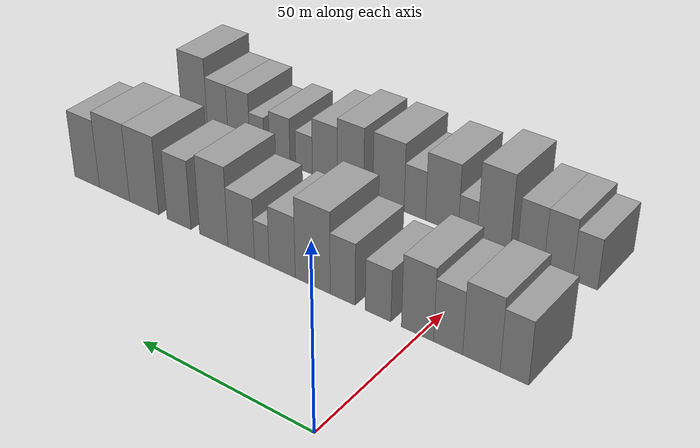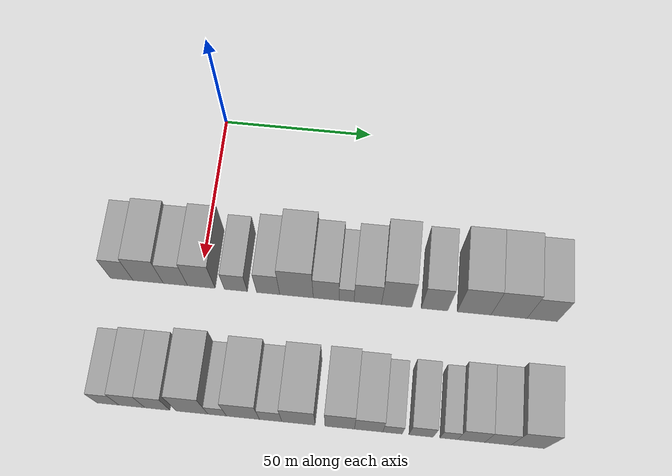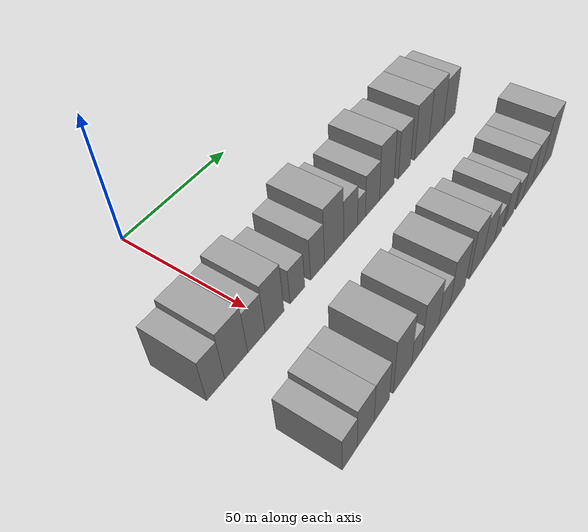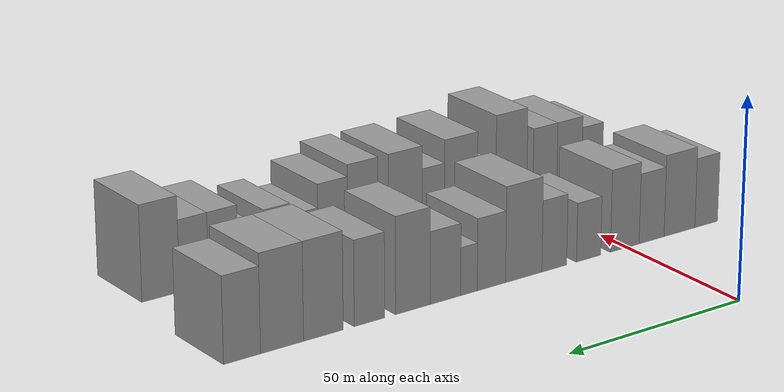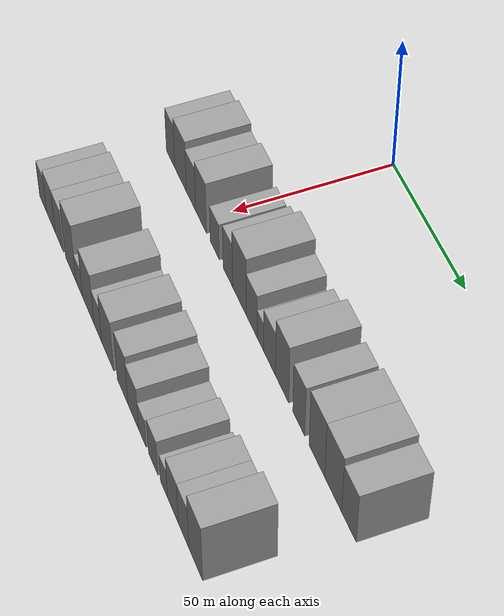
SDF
<sdf version="1.6">
 <world name="default">
  <model name="building_30">
   <static>1</static>
   <pose>50.0000 -25.3044 0 0.000000 0.000000 0.000000</pose>
   <link name="link">
    <pose>0 0 9.00 0 0 0</pose>
    <collision name="collision"><geometry><box><size>20.0000 7.3676 18.0000</size></box></geometry></collision>
    <visual name="visual">
     <cast_shadows>0</cast_shadows>
     <geometry><box><size>20.0000 7.3676 18.0000</size></box></geometry>
     <material>
      <script>
       <uri>model://grey_wall/materials/scripts</uri>
       <uri>model://grey_wall/materials/textures</uri>
       <name>vrc/grey_wall</name>
      </script>
     </material>
    </visual>
   </link>
  </model>
  <model name="building_31">
   <static>1</static>
   <pose>50.0000 -16.6911 0 0.000000 0.000000 0.000000</pose>
   <link name="link">
    <pose>0 0 10.50 0 0 0</pose>
    <collision name="collision"><geometry><box><size>20.0000 9.8591 21.0000</size></box></geometry></collision>
    <visual name="visual">
     <cast_shadows>0</cast_shadows>
     <geometry><box><size>20.0000 9.8591 21.0000</size></box></geometry>
     <material>
      <script>
       <uri>model://grey_wall/materials/scripts</uri>
       <uri>model://grey_wall/materials/textures</uri>
       <name>vrc/grey_wall</name>
      </script>
     </material>
    </visual>
   </link>
  </model>
  <model name="building_32">
   <static>1</static>
   <pose>50.0000 -7.8064 0 0.000000 0.000000 0.000000</pose>
   <link name="link">
    <pose>0 0 9.00 0 0 0</pose>
    <collision name="collision"><geometry><box><size>20.0000 7.9102 18.0000</size></box></geometry></collision>
    <visual name="visual">
     <cast_shadows>0</cast_shadows>
     <geometry><box><size>20.0000 7.9102 18.0000</size></box></geometry>
     <material>
      <script>
       <uri>model://grey_wall/materials/scripts</uri>
       <uri>model://grey_wall/materials/textures</uri>
       <name>vrc/grey_wall</name>
      </script>
     </material>
    </visual>
   </link>
  </model>
  <model name="building_33">
   <static>1</static>
   <pose>50.0000 0.6344 0 0.000000 0.000000 0.000000</pose>
   <link name="link">
    <pose>0 0 10.50 0 0 0</pose>
    <collision name="collision"><geometry><box><size>20.0000 8.9715 21.0000</size></box></geometry></collision>
    <visual name="visual">
     <cast_shadows>0</cast_shadows>
     <geometry><box><size>20.0000 8.9715 21.0000</size></box></geometry>
     <material>
      <script>
       <uri>model://grey_wall/materials/scripts</uri>
       <uri>model://grey_wall/materials/textures</uri>
       <name>vrc/grey_wall</name>
      </script>
     </material>
    </visual>
   </link>
  </model>
  <model name="building_34">
   <static>1</static>
   <pose>50.0000 11.8369 0 0.000000 0.000000 0.000000</pose>
   <link name="link">
    <pose>0 0 7.50 0 0 0</pose>
    <collision name="collision"><geometry><box><size>20.0000 7.4334 15.0000</size></box></geometry></collision>
    <visual name="visual">
     <cast_shadows>0</cast_shadows>
     <geometry><box><size>20.0000 7.4334 15.0000</size></box></geometry>
     <material>
      <script>
       <uri>model://grey_wall/materials/scripts</uri>
       <uri>model://grey_wall/materials/textures</uri>
       <name>vrc/grey_wall</name>
      </script>
     </material>
    </visual>
   </link>
  </model>
  <model name="building_35">
   <static>1</static>
   <pose>50.0000 22.2946 0 0.000000 0.000000 0.000000</pose>
   <link name="link">
    <pose>0 0 9.00 0 0 0</pose>
    <collision name="collision"><geometry><box><size>20.0000 7.4822 18.0000</size></box></geometry></collision>
    <visual name="visual">
     <cast_shadows>0</cast_shadows>
     <geometry><box><size>20.0000 7.4822 18.0000</size></box></geometry>
     <material>
      <script>
       <uri>model://grey_wall/materials/scripts</uri>
       <uri>model://grey_wall/materials/textures</uri>
       <name>vrc/grey_wall</name>
      </script>
     </material>
    </visual>
   </link>
  </model>
  <model name="building_36">
   <static>1</static>
   <pose>50.0000 31.4250 0 0.000000 0.000000 0.000000</pose>
   <link name="link">
    <pose>0 0 12.00 0 0 0</pose>
    <collision name="collision"><geometry><box><size>20.0000 10.7786 24.0000</size></box></geometry></collision>
    <visual name="visual">
     <cast_shadows>0</cast_shadows>
     <geometry><box><size>20.0000 10.7786 24.0000</size></box></geometry>
     <material>
      <script>
       <uri>model://grey_wall/materials/scripts</uri>
       <uri>model://grey_wall/materials/textures</uri>
       <name>vrc/grey_wall</name>
      </script>
     </material>
    </visual>
   </link>
  </model>
  <model name="building_37">
   <static>1</static>
   <pose>50.0000 40.9600 0 0.000000 0.000000 0.000000</pose>
   <link name="link">
    <pose>0 0 9.00 0 0 0</pose>
    <collision name="collision"><geometry><box><size>20.0000 8.2913 18.0000</size></box></geometry></collision>
    <visual name="visual">
     <cast_shadows>0</cast_shadows>
     <geometry><box><size>20.0000 8.2913 18.0000</size></box></geometry>
     <material>
      <script>
       <uri>model://grey_wall/materials/scripts</uri>
       <uri>model://grey_wall/materials/textures</uri>
       <name>vrc/grey_wall</name>
      </script>
     </material>
    </visual>
   </link>
  </model>
  <model name="building_38">
   <static>1</static>
   <pose>50.0000 47.5080 0 0.000000 0.000000 0.000000</pose>
   <link name="link">
    <pose>0 0 6.00 0 0 0</pose>
    <collision name="collision"><geometry><box><size>20.0000 4.8046 12.0000</size></box></geometry></collision>
    <visual name="visual">
     <cast_shadows>0</cast_shadows>
     <geometry><box><size>20.0000 4.8046 12.0000</size></box></geometry>
     <material>
      <script>
       <uri>model://grey_wall/materials/scripts</uri>
       <uri>model://grey_wall/materials/textures</uri>
       <name>vrc/grey_wall</name>
      </script>
     </material>
    </visual>
   </link>
  </model>
  <model name="building_39">
   <static>1</static>
   <pose>50.0000 54.3038 0 0.000000 0.000000 0.000000</pose>
   <link name="link">
    <pose>0 0 9.00 0 0 0</pose>
    <collision name="collision"><geometry><box><size>20.0000 8.7870 18.0000</size></box></geometry></collision>
    <visual name="visual">
     <cast_shadows>0</cast_shadows>
     <geometry><box><size>20.0000 8.7870 18.0000</size></box></geometry>
     <material>
      <script>
       <uri>model://grey_wall/materials/scripts</uri>
       <uri>model://grey_wall/materials/textures</uri>
       <name>vrc/grey_wall</name>
      </script>
     </material>
    </visual>
   </link>
  </model>
  <model name="building_40">
   <static>1</static>
   <pose>50.0000 63.5560 0 0.000000 0.000000 0.000000</pose>
   <link name="link">
    <pose>0 0 12.00 0 0 0</pose>
    <collision name="collision"><geometry><box><size>20.0000 9.7173 24.0000</size></box></geometry></collision>
    <visual name="visual">
     <cast_shadows>0</cast_shadows>
     <geometry><box><size>20.0000 9.7173 24.0000</size></box></geometry>
     <material>
      <script>
       <uri>model://grey_wall/materials/scripts</uri>
       <uri>model://grey_wall/materials/textures</uri>
       <name>vrc/grey_wall</name>
      </script>
     </material>
    </visual>
   </link>
  </model>
  <model name="building_41">
   <static>1</static>
   <pose>50.0000 75.6388 0 0.000000 0.000000 0.000000</pose>
   <link name="link">
    <pose>0 0 10.50 0 0 0</pose>
    <collision name="collision"><geometry><box><size>20.0000 8.4484 21.0000</size></box></geometry></collision>
    <visual name="visual">
     <cast_shadows>0</cast_shadows>
     <geometry><box><size>20.0000 8.4484 21.0000</size></box></geometry>
     <material>
      <script>
       <uri>model://grey_wall/materials/scripts</uri>
       <uri>model://grey_wall/materials/textures</uri>
       <name>vrc/grey_wall</name>
      </script>
     </material>
    </visual>
   </link>
  </model>
  <model name="building_42">
   <static>1</static>
   <pose>50.0000 88.2339 0 0.000000 0.000000 0.000000</pose>
   <link name="link">
    <pose>0 0 12.00 0 0 0</pose>
    <collision name="collision"><geometry><box><size>20.0000 10.7418 24.0000</size></box></geometry></collision>
    <visual name="visual">
     <cast_shadows>0</cast_shadows>
     <geometry><box><size>20.0000 10.7418 24.0000</size></box></geometry>
     <material>
      <script>
       <uri>model://grey_wall/materials/scripts</uri>
       <uri>model://grey_wall/materials/textures</uri>
       <name>vrc/grey_wall</name>
      </script>
     </material>
    </visual>
   </link>
  </model>
  <model name="building_43">
   <static>1</static>
   <pose>50.0000 99.3218 0 0.000000 0.000000 0.000000</pose>
   <link name="link">
    <pose>0 0 12.00 0 0 0</pose>
    <collision name="collision"><geometry><box><size>20.0000 11.4338 24.0000</size></box></geometry></collision>
    <visual name="visual">
     <cast_shadows>0</cast_shadows>
     <geometry><box><size>20.0000 11.4338 24.0000</size></box></geometry>
     <material>
      <script>
       <uri>model://grey_wall/materials/scripts</uri>
       <uri>model://grey_wall/materials/textures</uri>
       <name>vrc/grey_wall</name>
      </script>
     </material>
    </visual>
   </link>
  </model>
  <model name="building_44">
   <static>1</static>
   <pose>50.0000 109.8628 0 0.000000 0.000000 0.000000</pose>
   <link name="link">
    <pose>0 0 10.50 0 0 0</pose>
    <collision name="collision"><geometry><box><size>20.0000 9.6482 21.0000</size></box></geometry></collision>
    <visual name="visual">
     <cast_shadows>0</cast_shadows>
     <geometry><box><size>20.0000 9.6482 21.0000</size></box></geometry>
     <material>
      <script>
       <uri>model://grey_wall/materials/scripts</uri>
       <uri>model://grey_wall/materials/textures</uri>
       <name>vrc/grey_wall</name>
      </script>
     </material>
    </visual>
   </link>
  </model>
  <model name="building_91">
   <static>1</static>
   <pose>90.0000 -22.0022 0 0.000000 0.000000 0.000000</pose>
   <link name="link">
    <pose>0 0 7.50 0 0 0</pose>
    <collision name="collision"><geometry><box><size>20.0000 6.8076 15.0000</size></box></geometry></collision>
    <visual name="visual">
     <cast_shadows>0</cast_shadows>
     <geometry><box><size>20.0000 6.8076 15.0000</size></box></geometry>
     <material>
      <script>
       <uri>model://grey_wall/materials/scripts</uri>
       <uri>model://grey_wall/materials/textures</uri>
       <name>vrc/grey_wall</name>
      </script>
     </material>
    </visual>
   </link>
  </model>
  <model name="building_92">
   <static>1</static>
   <pose>90.0000 -14.5587 0 0.000000 0.000000 0.000000</pose>
   <link name="link">
    <pose>0 0 9.00 0 0 0</pose>
    <collision name="collision"><geometry><box><size>20.0000 8.0795 18.0000</size></box></geometry></collision>
    <visual name="visual">
     <cast_shadows>0</cast_shadows>
     <geometry><box><size>20.0000 8.0795 18.0000</size></box></geometry>
     <material>
      <script>
       <uri>model://grey_wall/materials/scripts</uri>
       <uri>model://grey_wall/materials/textures</uri>
       <name>vrc/grey_wall</name>
      </script>
     </material>
    </visual>
   </link>
  </model>
  <model name="building_93">
   <static>1</static>
   <pose>90.0000 -6.6873 0 0.000000 0.000000 0.000000</pose>
   <link name="link">
    <pose>0 0 9.00 0 0 0</pose>
    <collision name="collision"><geometry><box><size>20.0000 7.6632 18.0000</size></box></geometry></collision>
    <visual name="visual">
     <cast_shadows>0</cast_shadows>
     <geometry><box><size>20.0000 7.6632 18.0000</size></box></geometry>
     <material>
      <script>
       <uri>model://grey_wall/materials/scripts</uri>
       <uri>model://grey_wall/materials/textures</uri>
       <name>vrc/grey_wall</name>
      </script>
     </material>
    </visual>
   </link>
  </model>
  <model name="building_94">
   <static>1</static>
   <pose>90.0000 4.0366 0 0.000000 0.000000 0.000000</pose>
   <link name="link">
    <pose>0 0 12.00 0 0 0</pose>
    <collision name="collision"><geometry><box><size>20.0000 9.7846 24.0000</size></box></geometry></collision>
    <visual name="visual">
     <cast_shadows>0</cast_shadows>
     <geometry><box><size>20.0000 9.7846 24.0000</size></box></geometry>
     <material>
      <script>
       <uri>model://grey_wall/materials/scripts</uri>
       <uri>model://grey_wall/materials/textures</uri>
       <name>vrc/grey_wall</name>
      </script>
     </material>
    </visual>
   </link>
  </model>
  <model name="building_95">
   <static>1</static>
   <pose>90.0000 11.7919 0 0.000000 0.000000 0.000000</pose>
   <link name="link">
    <pose>0 0 6.00 0 0 0</pose>
    <collision name="collision"><geometry><box><size>20.0000 5.7261 12.0000</size></box></geometry></collision>
    <visual name="visual">
     <cast_shadows>0</cast_shadows>
     <geometry><box><size>20.0000 5.7261 12.0000</size></box></geometry>
     <material>
      <script>
       <uri>model://grey_wall/materials/scripts</uri>
       <uri>model://grey_wall/materials/textures</uri>
       <name>vrc/grey_wall</name>
      </script>
     </material>
    </visual>
   </link>
  </model>
  <model name="building_96">
   <static>1</static>
   <pose>90.0000 19.7105 0 0.000000 0.000000 0.000000</pose>
   <link name="link">
    <pose>0 0 10.50 0 0 0</pose>
    <collision name="collision"><geometry><box><size>20.0000 10.1111 21.0000</size></box></geometry></collision>
    <visual name="visual">
     <cast_shadows>0</cast_shadows>
     <geometry><box><size>20.0000 10.1111 21.0000</size></box></geometry>
     <material>
      <script>
       <uri>model://grey_wall/materials/scripts</uri>
       <uri>model://grey_wall/materials/textures</uri>
       <name>vrc/grey_wall</name>
      </script>
     </material>
    </visual>
   </link>
  </model>
  <model name="building_97">
   <static>1</static>
   <pose>90.0000 28.1918 0 0.000000 0.000000 0.000000</pose>
   <link name="link">
    <pose>0 0 7.50 0 0 0</pose>
    <collision name="collision"><geometry><box><size>20.0000 6.8514 15.0000</size></box></geometry></collision>
    <visual name="visual">
     <cast_shadows>0</cast_shadows>
     <geometry><box><size>20.0000 6.8514 15.0000</size></box></geometry>
     <material>
      <script>
       <uri>model://grey_wall/materials/scripts</uri>
       <uri>model://grey_wall/materials/textures</uri>
       <name>vrc/grey_wall</name>
      </script>
     </material>
    </visual>
   </link>
  </model>
  <model name="building_98">
   <static>1</static>
   <pose>90.0000 36.6967 0 0.000000 0.000000 0.000000</pose>
   <link name="link">
    <pose>0 0 10.50 0 0 0</pose>
    <collision name="collision"><geometry><box><size>20.0000 10.1584 21.0000</size></box></geometry></collision>
    <visual name="visual">
     <cast_shadows>0</cast_shadows>
     <geometry><box><size>20.0000 10.1584 21.0000</size></box></geometry>
     <material>
      <script>
       <uri>model://grey_wall/materials/scripts</uri>
       <uri>model://grey_wall/materials/textures</uri>
       <name>vrc/grey_wall</name>
      </script>
     </material>
    </visual>
   </link>
  </model>
  <model name="building_99">
   <static>1</static>
   <pose>90.0000 49.2708 0 0.000000 0.000000 0.000000</pose>
   <link name="link">
    <pose>0 0 10.50 0 0 0</pose>
    <collision name="collision"><geometry><box><size>20.0000 8.9898 21.0000</size></box></geometry></collision>
    <visual name="visual">
     <cast_shadows>0</cast_shadows>
     <geometry><box><size>20.0000 8.9898 21.0000</size></box></geometry>
     <material>
      <script>
       <uri>model://grey_wall/materials/scripts</uri>
       <uri>model://grey_wall/materials/textures</uri>
       <name>vrc/grey_wall</name>
      </script>
     </material>
    </visual>
   </link>
  </model>
  <model name="building_100">
   <static>1</static>
   <pose>90.0000 58.0684 0 0.000000 0.000000 0.000000</pose>
   <link name="link">
    <pose>0 0 9.00 0 0 0</pose>
    <collision name="collision"><geometry><box><size>20.0000 8.6053 18.0000</size></box></geometry></collision>
    <visual name="visual">
     <cast_shadows>0</cast_shadows>
     <geometry><box><size>20.0000 8.6053 18.0000</size></box></geometry>
     <material>
      <script>
       <uri>model://grey_wall/materials/scripts</uri>
       <uri>model://grey_wall/materials/textures</uri>
       <name>vrc/grey_wall</name>
      </script>
     </material>
    </visual>
   </link>
  </model>
  <model name="building_101">
   <static>1</static>
   <pose>90.0000 65.3321 0 0.000000 0.000000 0.000000</pose>
   <link name="link">
    <pose>0 0 6.00 0 0 0</pose>
    <collision name="collision"><geometry><box><size>20.0000 5.9221 12.0000</size></box></geometry></collision>
    <visual name="visual">
     <cast_shadows>0</cast_shadows>
     <geometry><box><size>20.0000 5.9221 12.0000</size></box></geometry>
     <material>
      <script>
       <uri>model://grey_wall/materials/scripts</uri>
       <uri>model://grey_wall/materials/textures</uri>
       <name>vrc/grey_wall</name>
      </script>
     </material>
    </visual>
   </link>
  </model>
  <model name="building_102">
   <static>1</static>
   <pose>90.0000 73.9840 0 0.000000 0.000000 0.000000</pose>
   <link name="link">
    <pose>0 0 7.50 0 0 0</pose>
    <collision name="collision"><geometry><box><size>20.0000 7.3816 15.0000</size></box></geometry></collision>
    <visual name="visual">
     <cast_shadows>0</cast_shadows>
     <geometry><box><size>20.0000 7.3816 15.0000</size></box></geometry>
     <material>
      <script>
       <uri>model://grey_wall/materials/scripts</uri>
       <uri>model://grey_wall/materials/textures</uri>
       <name>vrc/grey_wall</name>
      </script>
     </material>
    </visual>
   </link>
  </model>
  <model name="building_103">
   <static>1</static>
   <pose>90.0000 82.3448 0 0.000000 0.000000 0.000000</pose>
   <link name="link">
    <pose>0 0 6.00 0 0 0</pose>
    <collision name="collision"><geometry><box><size>20.0000 5.3401 12.0000</size></box></geometry></collision>
    <visual name="visual">
     <cast_shadows>0</cast_shadows>
     <geometry><box><size>20.0000 5.3401 12.0000</size></box></geometry>
     <material>
      <script>
       <uri>model://grey_wall/materials/scripts</uri>
       <uri>model://grey_wall/materials/textures</uri>
       <name>vrc/grey_wall</name>
      </script>
     </material>
    </visual>
   </link>
  </model>
  <model name="building_104">
   <static>1</static>
   <pose>90.0000 89.1257 0 0.000000 0.000000 0.000000</pose>
   <link name="link">
    <pose>0 0 9.00 0 0 0</pose>
    <collision name="collision"><geometry><box><size>20.0000 8.2217 18.0000</size></box></geometry></collision>
    <visual name="visual">
     <cast_shadows>0</cast_shadows>
     <geometry><box><size>20.0000 8.2217 18.0000</size></box></geometry>
     <material>
      <script>
       <uri>model://grey_wall/materials/scripts</uri>
       <uri>model://grey_wall/materials/textures</uri>
       <name>vrc/grey_wall</name>
      </script>
     </material>
    </visual>
   </link>
  </model>
  <model name="building_105">
   <static>1</static>
   <pose>90.0000 97.1862 0 0.000000 0.000000 0.000000</pose>
   <link name="link">
    <pose>0 0 9.00 0 0 0</pose>
    <collision name="collision"><geometry><box><size>20.0000 7.8993 18.0000</size></box></geometry></collision>
    <visual name="visual">
     <cast_shadows>0</cast_shadows>
     <geometry><box><size>20.0000 7.8993 18.0000</size></box></geometry>
     <material>
      <script>
       <uri>model://grey_wall/materials/scripts</uri>
       <uri>model://grey_wall/materials/textures</uri>
       <name>vrc/grey_wall</name>
      </script>
     </material>
    </visual>
   </link>
  </model>
  <model name="building_106">
   <static>1</static>
   <pose>90.0000 106.2104 0 0.000000 0.000000 0.000000</pose>
   <link name="link">
    <pose>0 0 12.00 0 0 0</pose>
    <collision name="collision"><geometry><box><size>20.0000 10.1489 24.0000</size></box></geometry></collision>
    <visual name="visual">
     <cast_shadows>0</cast_shadows>
     <geometry><box><size>20.0000 10.1489 24.0000</size></box></geometry>
     <material>
      <script>
       <uri>model://grey_wall/materials/scripts</uri>
       <uri>model://grey_wall/materials/textures</uri>
       <name>vrc/grey_wall</name>
      </script>
     </material>
    </visual>
   </link>
  </model>
 </world>
</sdf>
